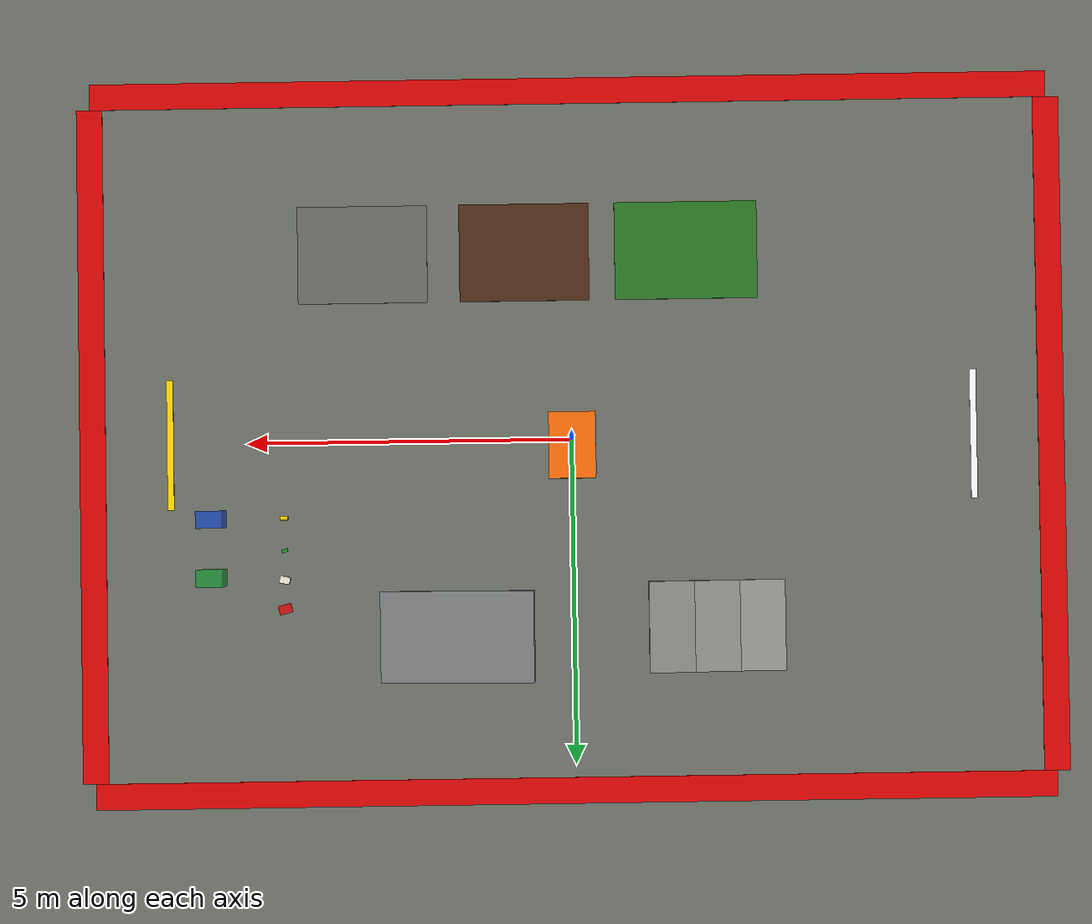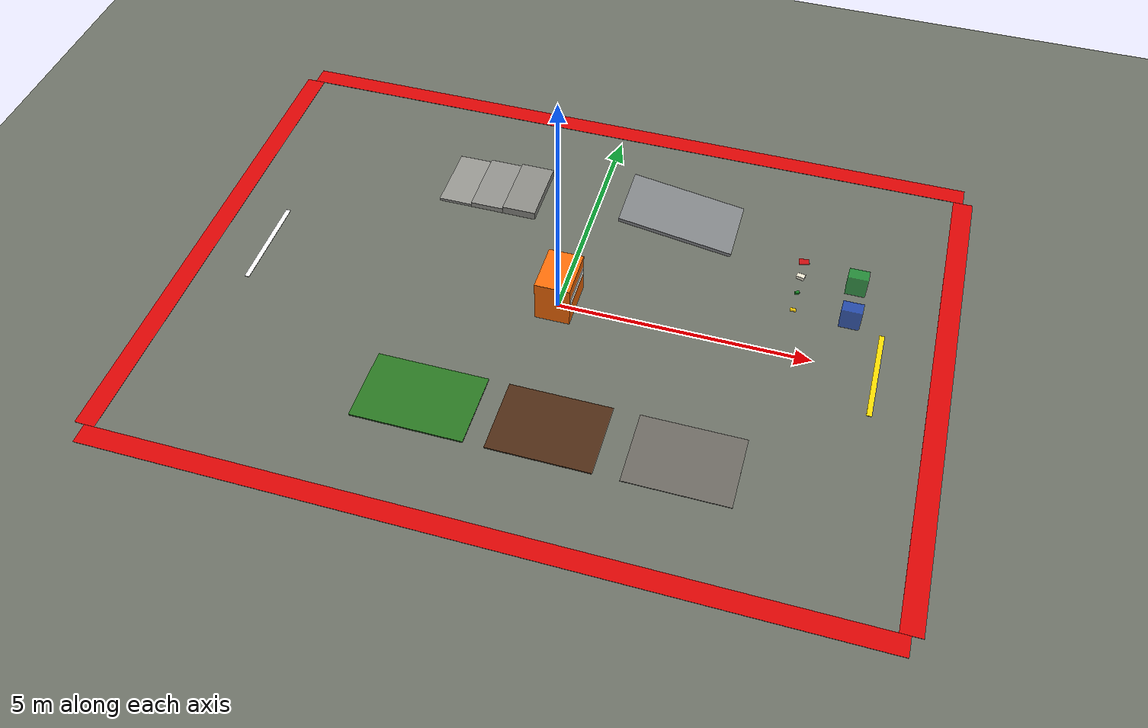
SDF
<?xml version="1.0"?>
<sdf version="1.9">
  <world name="atec_practice_world">
    <gravity>0 0 -9.81</gravity>
    <plugin filename="gz-sim-physics-system" name="gz::sim::systems::Physics"/>
    <plugin filename="gz-sim-user-commands-system" name="gz::sim::systems::UserCommands"/>
    <plugin filename="gz-sim-scene-broadcaster-system" name="gz::sim::systems::SceneBroadcaster"/>
    <plugin filename="gz-sim-sensors-system" name="gz::sim::systems::Sensors">
      <render_engine>ogre2</render_engine>
    </plugin>

    <physics name="default_physics" type="ignored">
      <max_step_size>0.002</max_step_size>
      <real_time_factor>1.0</real_time_factor>
      <real_time_update_rate>500</real_time_update_rate>
    </physics>
    <scene>
      <ambient>0.48 0.48 0.46 1</ambient>
      <background>0.70 0.78 0.84 1</background>
      <shadows>true</shadows>
    </scene>
    <light name="sun" type="directional">
      <pose>0 0 12 0 0 0</pose>
      <cast_shadows>true</cast_shadows>
      <diffuse>0.85 0.82 0.75 1</diffuse>
      <specular>0.15 0.15 0.15 1</specular>
      <direction>-0.45 0.20 -0.87</direction>
    </light>

    <model name="ground">
      <static>true</static>
      <link name="ground_link">
        <collision name="ground_collision">
          <geometry><plane><normal>0 0 1</normal><size>16 12</size></plane></geometry>
          <surface><friction><ode><mu>0.9</mu><mu2>0.9</mu2></ode></friction></surface>
        </collision>
        <visual name="ground_visual">
          <geometry><plane><normal>0 0 1</normal><size>16 12</size></plane></geometry>
          <material><ambient>0.35 0.37 0.34 1</ambient><diffuse>0.42 0.44 0.40 1</diffuse></material>
        </visual>
      </link>
    </model>

    <!-- Competition boundary is visual tape, not a fake physical wall. -->
    <model name="red_boundary_tape">
      <static>true</static>
      <link name="tape">
        <visual name="north"><pose>0 5.4 0.003 0 0 0</pose><geometry><box><size>14.8 0.40 0.006</size></box></geometry><material><ambient>0.85 0.02 0.02 1</ambient><diffuse>0.85 0.02 0.02 1</diffuse></material></visual>
        <visual name="south"><pose>0 -5.4 0.003 0 0 0</pose><geometry><box><size>14.8 0.40 0.006</size></box></geometry><material><ambient>0.85 0.02 0.02 1</ambient><diffuse>0.85 0.02 0.02 1</diffuse></material></visual>
        <visual name="east"><pose>7.4 0 0.003 0 0 0</pose><geometry><box><size>0.40 10.4 0.006</size></box></geometry><material><ambient>0.85 0.02 0.02 1</ambient><diffuse>0.85 0.02 0.02 1</diffuse></material></visual>
        <visual name="west"><pose>-7.4 0 0.003 0 0 0</pose><geometry><box><size>0.40 10.4 0.006</size></box></geometry><material><ambient>0.85 0.02 0.02 1</ambient><diffuse>0.85 0.02 0.02 1</diffuse></material></visual>
      </link>
    </model>

    <model name="start_finish_markings">
      <static>true</static>
      <link name="markings">
        <visual name="start"><pose>-6.2 0 0.005 0 0 0</pose><geometry><box><size>0.10 2.0 0.01</size></box></geometry><material><ambient>1 1 1 1</ambient><diffuse>1 1 1 1</diffuse></material></visual>
        <visual name="finish"><pose>6.2 0 0.005 0 0 0</pose><geometry><box><size>0.10 2.0 0.01</size></box></geometry><material><ambient>1 0.85 0 1</ambient><diffuse>1 0.85 0 1</diffuse></material></visual>
      </link>
    </model>

    <!-- Flat-course navigation obstacle placed directly between the two demo goals. -->
    <model name="single_lidar_navigation_barrier">
      <static>true</static>
      <pose>0 0.10 0 0 0 0</pose>
      <link name="barrier">
        <collision name="barrier_collision">
          <pose>0 0 0.45 0 0 0</pose>
          <geometry><box><size>0.70 1.00 0.90</size></box></geometry>
        </collision>
        <visual name="barrier_body">
          <pose>0 0 0.45 0 0 0</pose>
          <geometry><box><size>0.70 1.00 0.90</size></box></geometry>
          <material><ambient>0.92 0.34 0.02 1</ambient><diffuse>0.98 0.42 0.03 1</diffuse></material>
        </visual>
        <visual name="front_reflective_band">
          <pose>-0.356 0 0.55 0 0 0</pose>
          <geometry><box><size>0.012 0.90 0.16</size></box></geometry>
          <material><ambient>0.95 0.95 0.92 1</ambient><diffuse>1 1 0.96 1</diffuse></material>
        </visual>
        <visual name="rear_reflective_band">
          <pose>0.356 0 0.55 0 0 0</pose>
          <geometry><box><size>0.012 0.90 0.16</size></box></geometry>
          <material><ambient>0.95 0.95 0.92 1</ambient><diffuse>1 1 0.96 1</diffuse></material>
        </visual>
      </link>
    </model>

    <!-- Three 56.7 mm risers make the maximum 170 mm competition step. -->
    <model name="step_170mm">
      <static>true</static>
      <pose>-2.2 2.9 0 0 0 0</pose>
      <link name="steps">
        <collision name="step1_collision"><pose>-0.70 0 0.02835 0 0 0</pose><geometry><box><size>0.70 1.4 0.0567</size></box></geometry></collision>
        <visual name="step1_visual"><pose>-0.70 0 0.02835 0 0 0</pose><geometry><box><size>0.70 1.4 0.0567</size></box></geometry><material><ambient>0.52 0.52 0.50 1</ambient><diffuse>0.58 0.58 0.56 1</diffuse></material></visual>
        <collision name="step2_collision"><pose>0 0 0.0567 0 0 0</pose><geometry><box><size>0.70 1.4 0.1134</size></box></geometry></collision>
        <visual name="step2_visual"><pose>0 0 0.0567 0 0 0</pose><geometry><box><size>0.70 1.4 0.1134</size></box></geometry><material><ambient>0.50 0.50 0.48 1</ambient><diffuse>0.56 0.56 0.54 1</diffuse></material></visual>
        <collision name="step3_collision"><pose>0.70 0 0.085 0 0 0</pose><geometry><box><size>0.70 1.4 0.17</size></box></geometry></collision>
        <visual name="step3_visual"><pose>0.70 0 0.085 0 0 0</pose><geometry><box><size>0.70 1.4 0.17</size></box></geometry><material><ambient>0.48 0.48 0.46 1</ambient><diffuse>0.54 0.54 0.52 1</diffuse></material></visual>
      </link>
    </model>

    <!-- 9 degree ramp stays below the competition's 10 degree limit. -->
    <model name="ramp_9deg">
      <static>true</static>
      <pose>1.8 3.0 0.20 0 0.15708 0</pose>
      <link name="ramp_link">
        <collision name="collision"><geometry><box><size>2.4 1.4 0.08</size></box></geometry></collision>
        <visual name="visual"><geometry><box><size>2.4 1.4 0.08</size></box></geometry><material><ambient>0.43 0.44 0.45 1</ambient><diffuse>0.50 0.51 0.52 1</diffuse></material></visual>
      </link>
    </model>

    <model name="grass_patch">
      <static>true</static><pose>-1.8 -2.9 0.015 0 0 0</pose>
      <link name="grass">
        <collision name="collision"><geometry><box><size>2.2 1.5 0.03</size></box></geometry><surface><friction><ode><mu>0.75</mu><mu2>0.65</mu2></ode></friction></surface></collision>
        <visual name="visual"><geometry><box><size>2.2 1.5 0.03</size></box></geometry><material><ambient>0.12 0.38 0.10 1</ambient><diffuse>0.16 0.46 0.13 1</diffuse></material></visual>
      </link>
    </model>
    <model name="mud_patch">
      <static>true</static><pose>0.7 -2.9 0.012 0 0 0</pose>
      <link name="mud">
        <collision name="collision"><geometry><box><size>2.0 1.5 0.024</size></box></geometry><surface><friction><ode><mu>0.32</mu><mu2>0.26</mu2></ode></friction></surface></collision>
        <visual name="visual"><geometry><box><size>2.0 1.5 0.024</size></box></geometry><material><ambient>0.23 0.12 0.06 1</ambient><diffuse>0.30 0.17 0.08 1</diffuse></material></visual>
      </link>
    </model>

    <!-- Representative 1-2 cm gravel; tune density per the organizer's lane. -->
    <model name="gravel_patch">
      <static>true</static><pose>3.2 -2.9 0 0 0 0</pose>
      <link name="gravel">
        <visual name="bed"><pose>0 0 0.006 0 0 0</pose><geometry><box><size>2.0 1.5 0.012</size></box></geometry><material><ambient>0.35 0.34 0.32 1</ambient><diffuse>0.42 0.41 0.38 1</diffuse></material></visual>
        <collision name="stone1"><pose>-0.70 -0.35 0.012 0 0 0</pose><geometry><sphere><radius>0.012</radius></sphere></geometry></collision>
        <collision name="stone2"><pose>-0.40 0.22 0.010 0 0 0</pose><geometry><sphere><radius>0.010</radius></sphere></geometry></collision>
        <collision name="stone3"><pose>-0.05 -0.28 0.015 0 0 0</pose><geometry><sphere><radius>0.015</radius></sphere></geometry></collision>
        <collision name="stone4"><pose>0.25 0.31 0.011 0 0 0</pose><geometry><sphere><radius>0.011</radius></sphere></geometry></collision>
        <collision name="stone5"><pose>0.62 -0.15 0.014 0 0 0</pose><geometry><sphere><radius>0.014</radius></sphere></geometry></collision>
      </link>
    </model>

    <!-- Lidless bin outer dimensions: 0.40 x 0.26 x 0.47 m. -->
    <model name="blue_recycling_bin">
      <static>true</static><pose>5.55 1.15 0 0 0 0</pose>
      <link name="bin">
        <collision name="bottom"><pose>0 0 0.015 0 0 0</pose><geometry><box><size>0.32 0.195 0.03</size></box></geometry></collision>
        <collision name="front"><pose>0.19 0 0.235 0 0 0</pose><geometry><box><size>0.02 0.26 0.47</size></box></geometry></collision>
        <collision name="back"><pose>-0.19 0 0.235 0 0 0</pose><geometry><box><size>0.02 0.26 0.47</size></box></geometry></collision>
        <collision name="left"><pose>0 0.12 0.235 0 0 0</pose><geometry><box><size>0.40 0.02 0.47</size></box></geometry></collision>
        <collision name="right"><pose>0 -0.12 0.235 0 0 0</pose><geometry><box><size>0.40 0.02 0.47</size></box></geometry></collision>
        <visual name="body"><pose>0 0 0.235 0 0 0</pose><geometry><box><size>0.40 0.26 0.47</size></box></geometry><material><ambient>0.02 0.18 0.72 0.65</ambient><diffuse>0.03 0.24 0.82 0.65</diffuse></material></visual>
      </link>
    </model>
    <model name="green_food_waste_bin">
      <static>true</static><pose>5.55 2.05 0 0 0 0</pose>
      <link name="bin">
        <collision name="bottom"><pose>0 0 0.015 0 0 0</pose><geometry><box><size>0.32 0.195 0.03</size></box></geometry></collision>
        <collision name="front"><pose>0.19 0 0.235 0 0 0</pose><geometry><box><size>0.02 0.26 0.47</size></box></geometry></collision>
        <collision name="back"><pose>-0.19 0 0.235 0 0 0</pose><geometry><box><size>0.02 0.26 0.47</size></box></geometry></collision>
        <collision name="left"><pose>0 0.12 0.235 0 0 0</pose><geometry><box><size>0.40 0.02 0.47</size></box></geometry></collision>
        <collision name="right"><pose>0 -0.12 0.235 0 0 0</pose><geometry><box><size>0.40 0.02 0.47</size></box></geometry></collision>
        <visual name="body"><pose>0 0 0.235 0 0 0</pose><geometry><box><size>0.40 0.26 0.47</size></box></geometry><material><ambient>0.02 0.50 0.12 0.65</ambient><diffuse>0.03 0.62 0.16 0.65</diffuse></material></visual>
      </link>
    </model>

    <!--
      Manipulable waste masses are training assumptions because the 2026 guide
      specifies appearance and approximate dimensions, but not physical data.
    -->
    <model name="yellow_330ml_can">
      <static>false</static>
      <pose>4.45 1.15 0.057 0 1.5708 0</pose>
      <link name="can">
        <inertial>
          <mass>0.080</mass>
          <inertia>
            <ixx>0.000109947</ixx><ixy>0</ixy><ixz>0</ixz>
            <iyy>0.000109947</iyy><iyz>0</iyz><izz>0.000043560</izz>
          </inertia>
        </inertial>
        <velocity_decay><linear>0.02</linear><angular>0.04</angular></velocity_decay>
        <collision name="collision">
          <geometry><cylinder><radius>0.033</radius><length>0.115</length></cylinder></geometry>
          <surface>
            <friction><ode><mu>0.42</mu><mu2>0.42</mu2></ode></friction>
            <bounce><restitution_coefficient>0.08</restitution_coefficient><threshold>0.10</threshold></bounce>
          </surface>
        </collision>
        <visual name="visual">
          <geometry><cylinder><radius>0.033</radius><length>0.115</length></cylinder></geometry>
          <material><ambient>0.95 0.75 0.02 1</ambient><diffuse>1 0.82 0.03 1</diffuse></material>
        </visual>
      </link>
    </model>

    <model name="watermelon_rind">
      <static>false</static>
      <pose>4.45 1.65 0.025 0 0 0.3</pose>
      <link name="rind">
        <inertial>
          <mass>0.090</mass>
          <inertia>
            <ixx>0.000037500</ixx><ixy>0</ixy><ixz>0</ixz>
            <iyy>0.000079500</iyy><iyz>0</iyz><izz>0.000079500</izz>
          </inertia>
        </inertial>
        <velocity_decay><linear>0.03</linear><angular>0.05</angular></velocity_decay>
        <collision name="collision">
          <geometry><box><size>0.09 0.05 0.05</size></box></geometry>
          <surface>
            <friction><ode><mu>0.35</mu><mu2>0.30</mu2></ode></friction>
            <bounce><restitution_coefficient>0.02</restitution_coefficient><threshold>0.10</threshold></bounce>
          </surface>
        </collision>
        <visual name="visual">
          <geometry><box><size>0.09 0.05 0.05</size></box></geometry>
          <material><ambient>0.08 0.48 0.12 1</ambient><diffuse>0.10 0.58 0.15 1</diffuse></material>
        </visual>
      </link>
    </model>

    <model name="meal_box">
      <static>false</static>
      <pose>4.45 2.10 0.035 0 0 -0.2</pose>
      <link name="box">
        <inertial>
          <mass>0.120</mass>
          <inertia>
            <ixx>0.000170000</ixx><ixy>0</ixy><ixz>0</ixz>
            <iyy>0.000305000</iyy><iyz>0</iyz><izz>0.000377000</izz>
          </inertia>
        </inertial>
        <velocity_decay><linear>0.03</linear><angular>0.06</angular></velocity_decay>
        <collision name="collision">
          <geometry><box><size>0.16 0.11 0.07</size></box></geometry>
          <surface>
            <friction><ode><mu>0.52</mu><mu2>0.48</mu2></ode></friction>
            <bounce><restitution_coefficient>0.03</restitution_coefficient><threshold>0.10</threshold></bounce>
          </surface>
        </collision>
        <visual name="visual">
          <geometry><box><size>0.16 0.11 0.07</size></box></geometry>
          <material><ambient>0.85 0.83 0.76 1</ambient><diffuse>0.92 0.90 0.82 1</diffuse></material>
        </visual>
      </link>
    </model>

    <!-- Rigid low-profile proxy: deformable plastic is outside rigid-body SDF. -->
    <model name="red_plastic_bag">
      <static>false</static>
      <pose>4.45 2.55 0.012 0 0 0.25</pose>
      <link name="bag">
        <inertial>
          <mass>0.050</mass>
          <inertia>
            <ixx>0.000084067</ixx><ixy>0</ixy><ixz>0</ixz>
            <iyy>0.000169067</iyy><iyz>0</iyz><izz>0.000248333</izz>
          </inertia>
        </inertial>
        <velocity_decay><linear>0.05</linear><angular>0.08</angular></velocity_decay>
        <collision name="collision">
          <geometry><box><size>0.20 0.14 0.024</size></box></geometry>
          <surface>
            <friction><ode><mu>0.68</mu><mu2>0.62</mu2></ode></friction>
            <bounce><restitution_coefficient>0.01</restitution_coefficient><threshold>0.10</threshold></bounce>
          </surface>
        </collision>
        <visual name="visual">
          <geometry><box><size>0.20 0.14 0.024</size></box></geometry>
          <material><ambient>0.80 0.02 0.04 0.85</ambient><diffuse>0.90 0.03 0.05 0.85</diffuse></material>
        </visual>
      </link>
    </model>
  </world>
</sdf>
